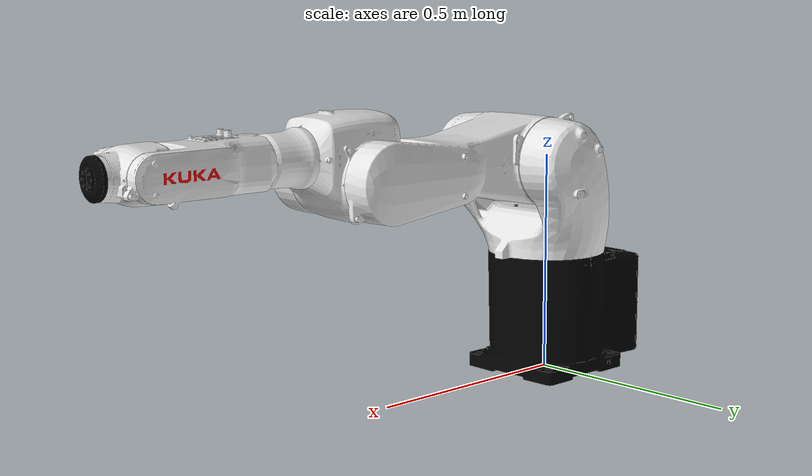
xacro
<?xml version="1.0" encoding="UTF-8"?>
<robot xmlns:xacro="http://www.ros.org/wiki/xacro" name="kr16_r1100_3">
  <!-- Import urdf files  -->
  <xacro:include filename="$(find kuka_agilus_support)/urdf/kr16_r1100_3_macro.xacro"/>
  <xacro:include filename="$(find kuka_agilus_support)/urdf/kr_agilus_ros2_control_macro.xacro"/>
  <!-- Basic arguments  -->
  <xacro:arg name="prefix" default=""/>
  <xacro:arg name="x" default="0"/>
  <xacro:arg name="y" default="0"/>
  <xacro:arg name="z" default="0"/>
  <xacro:arg name="roll" default="0"/>
  <xacro:arg name="pitch" default="0"/>
  <xacro:arg name="yaw" default="0"/>
  <xacro:arg name="rsi_xml_config_file" default=""/>
  <!-- kroshu-specific arguments -->
  <xacro:arg name="driver_version" default="rsi_only"/>
  <xacro:arg name="mode" default="hardware"/>
  <xacro:arg name="gpio_config" default=""/>
  <xacro:arg name="roundtrip_time" default="0"/>
  <xacro:arg name="client_ip" default="0.0.0.0"/>
  <xacro:arg name="client_port" default="59152"/>
  <xacro:arg name="mxa_client_port" default="1337"/>
  <xacro:arg name="controller_ip" default="0.0.0.0"/>
  <xacro:arg name="verify_robot_model" default="true"/>
  <xacro:kuka_agilus_ros2_control name="$(arg prefix)kr16_r1100_3" driver_version="$(arg driver_version)" client_ip="$(arg client_ip)" client_port="$(arg client_port)" mxa_client_port="$(arg mxa_client_port)" controller_ip="$(arg controller_ip)" prefix="$(arg prefix)" mode="$(arg mode)" gpio_config="$(arg gpio_config)" roundtrip_time="$(arg roundtrip_time)" verify_robot_model="$(arg verify_robot_model)" rsi_xml_config_file="$(arg rsi_xml_config_file)">
    <ext_axes_ros2_control_joints/>
  </xacro:kuka_agilus_ros2_control>
  <!-- world link -->
  <link name="world"/>
  <!-- robot links, joints -->
  <xacro:kuka_kr16_r1100_3_robot prefix="$(arg prefix)" package_name="kuka_agilus_support"/>
  <!-- default world - base_link joint -->
  <joint name="$(arg prefix)world-base_link" type="fixed">
    <parent link="world"/>
    <child link="$(arg prefix)base_link"/>
    <origin xyz="$(arg x) $(arg y) $(arg z)" rpy="$(arg roll) $(arg pitch) $(arg yaw)"/>
  </joint>
</robot>

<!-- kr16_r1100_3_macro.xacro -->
<robot xmlns:xacro="http://www.ros.org/wiki/xacro" name="kr16_r1100_3">
  <xacro:macro name="kuka_kr16_r1100_3_robot" params="prefix package_name">
    <link name="${prefix}base"/>
    <link name="${prefix}base_link">
      <collision>
        <geometry>
          <mesh filename="package://${package_name}/meshes/kr16_r1100_3/collision/base_link.stl"/>
        </geometry>
        <origin rpy="0.0 0.0 0.0" xyz="0.0 0.0 0.0"/>
      </collision>
      <inertial>
        <inertia ixx="0.3057" ixy="0.0" ixz="0.0" iyy="0.2546" iyz="0.0" izz="0.3706"/>
        <mass value="24.28"/>
        <origin rpy="-1.573 -1.1452 -3.1389" xyz="-0.0308 0.0 0.1313"/>
      </inertial>
      <visual>
        <geometry>
          <mesh filename="package://${package_name}/meshes/kr16_r1100_3/visual/base_link.dae"/>
        </geometry>
        <origin rpy="0.0 0.0 0.0" xyz="0.0 0.0 0.0"/>
      </visual>
    </link>
    <link name="${prefix}flange"/>
    <link name="${prefix}link_1">
      <collision>
        <geometry>
          <mesh filename="package://${package_name}/meshes/kr16_r1100_3/collision/link_1.stl"/>
        </geometry>
        <origin rpy="-3.1415853071795867 0.0 -0.0" xyz="0.0 -1.909332012706668e-06 0.25989999999298663"/>
      </collision>
      <inertial>
        <inertia ixx="0.2837" ixy="0.0" ixz="0.0" iyy="0.3388" iyz="0.0" izz="0.4206"/>
        <mass value="19.49"/>
        <origin rpy="-1.3913 -0.9149 1.6092" xyz="0.0324 -0.018 -0.1088"/>
      </inertial>
      <visual>
        <geometry>
          <mesh filename="package://${package_name}/meshes/kr16_r1100_3/visual/link_1.dae"/>
        </geometry>
        <origin rpy="-3.1415853071795867 0.0 -0.0" xyz="0.0 -1.909332012706668e-06 0.25989999999298663"/>
      </visual>
    </link>
    <link name="${prefix}link_2">
      <collision>
        <geometry>
          <mesh filename="package://${package_name}/meshes/kr16_r1100_3/collision/link_2.stl"/>
        </geometry>
        <origin rpy="1.5708 4.70197740325743e-38 1.5707963267948966" xyz="-0.4999994817073869 -0.09999999999999998 -0.1410999272695871"/>
      </collision>
      <inertial>
        <inertia ixx="1.1711" ixy="0.0" ixz="0.0" iyy="0.2762" iyz="0.0" izz="1.346"/>
        <mass value="26.554"/>
        <origin rpy="-1.5577 -1.4952 -0.0134" xyz="0.148 -0.0001 -0.1047"/>
      </inertial>
      <visual>
        <geometry>
          <mesh filename="package://${package_name}/meshes/kr16_r1100_3/visual/link_2.dae"/>
        </geometry>
        <origin rpy="1.5708 4.70197740325743e-38 1.5707963267948966" xyz="-0.4999994817073869 -0.09999999999999998 -0.1410999272695871"/>
      </visual>
    </link>
    <link name="${prefix}link_3">
      <collision>
        <geometry>
          <mesh filename="package://${package_name}/meshes/kr16_r1100_3/collision/link_3.stl"/>
        </geometry>
        <origin rpy="1.5708 -0.0 -0.0" xyz="-0.10000000000000003 0.999999481707387 -0.11659992726958707"/>
      </collision>
      <inertial>
        <inertia ixx="0.0673" ixy="0.0" ixz="0.0" iyy="0.0644" iyz="0.0" izz="0.0767"/>
        <mass value="11.2333"/>
        <origin rpy="0.8447 0.3051 0.813" xyz="0.018 -0.0249 -0.0958"/>
      </inertial>
      <visual>
        <geometry>
          <mesh filename="package://${package_name}/meshes/kr16_r1100_3/visual/link_3.dae"/>
        </geometry>
        <origin rpy="1.5708 -0.0 -0.0" xyz="-0.10000000000000003 0.999999481707387 -0.11659992726958707"/>
      </visual>
    </link>
    <link name="${prefix}link_4">
      <collision>
        <geometry>
          <mesh filename="package://${package_name}/meshes/kr16_r1100_3/collision/link_4.stl"/>
        </geometry>
        <origin rpy="-2.3561908169838683 1.570791132121014 -2.356194490195718" xyz="-1.0499986585350396 8.959098436386357e-07 0.22410385686016393"/>
      </collision>
      <inertial>
        <inertia ixx="0.0165" ixy="0.0" ixz="0.0" iyy="0.0987" iyz="0.0" izz="0.1042"/>
        <mass value="5.5747"/>
        <origin rpy="1.4524 -1.5372 -1.4584" xyz="-0.0016 0.0075 -0.1811"/>
      </inertial>
      <visual>
        <geometry>
          <mesh filename="package://${package_name}/meshes/kr16_r1100_3/visual/link_4.dae"/>
        </geometry>
        <origin rpy="-2.3561908169838683 1.570791132121014 -2.356194490195718" xyz="-1.0499986585350396 8.959098436386357e-07 0.22410385686016393"/>
      </visual>
    </link>
    <link name="${prefix}link_5">
      <collision>
        <geometry>
          <mesh filename="package://${package_name}/meshes/kr16_r1100_3/collision/link_5.stl"/>
        </geometry>
        <origin rpy="1.5708036732051034 -1.3492460511333464e-11 3.673218595765785e-06" xyz="-0.6000036430930371 1.0499988723052023 -0.05819745116616916"/>
      </collision>
      <inertial>
        <inertia ixx="0.0052" ixy="0.0" ixz="0.0" iyy="0.0041" iyz="0.0" izz="0.0059"/>
        <mass value="2.6776"/>
        <origin rpy="-1.5332 -1.4195 -0.0423" xyz="0.0088 -0.0006 -0.0524"/>
      </inertial>
      <visual>
        <geometry>
          <mesh filename="package://${package_name}/meshes/kr16_r1100_3/visual/link_5.dae"/>
        </geometry>
        <origin rpy="1.5708036732051034 -1.3492460511333464e-11 3.673218595765785e-06" xyz="-0.6000036430930371 1.0499988723052023 -0.05819745116616916"/>
      </visual>
    </link>
    <link name="${prefix}link_6">
      <collision>
        <geometry>
          <mesh filename="package://${package_name}/meshes/kr16_r1100_3/collision/link_6.stl"/>
        </geometry>
        <origin rpy="-2.6779399020961754 1.5707881132943111 -2.6779472485198745" xyz="-1.0499964413575995 4.979788517047373e-06 0.6618074999359618"/>
      </collision>
      <inertial>
        <inertia ixx="0.0002" ixy="0.0" ixz="0.0" iyy="0.0002" iyz="0.0" izz="0.0003"/>
        <mass value="0.4727"/>
        <origin rpy="-0.0002 0.0 -1.5692" xyz="0.0 0.0 -0.0136"/>
      </inertial>
      <visual>
        <geometry>
          <mesh filename="package://${package_name}/meshes/kr16_r1100_3/visual/link_6.dae"/>
        </geometry>
        <origin rpy="-2.6779399020961754 1.5707881132943111 -2.6779472485198745" xyz="-1.0499964413575995 4.979788517047373e-06 0.6618074999359618"/>
      </visual>
    </link>
    <link name="${prefix}tool0"/>
    <joint name="${prefix}base_link-base" type="fixed">
      <child link="${prefix}base"/>
      <origin rpy="0.0 0.0 0.0" xyz="0.0 0.0 0.0"/>
      <parent link="${prefix}base_link"/>
    </joint>
    <joint name="${prefix}joint_1" type="revolute">
      <axis xyz="0.0 0.0 1.0"/>
      <child link="${prefix}link_1"/>
      <limit effort="444.96" lower="-2.9671" upper="2.9671" velocity="5.0615"/>
      <origin rpy="-3.1416 0.0 0.0" xyz="0.0 0.0 0.2599"/>
      <parent link="${prefix}base_link"/>
    </joint>
    <joint name="${prefix}joint_2" type="revolute">
      <axis xyz="0.0 0.0 1.0"/>
      <child link="${prefix}link_2"/>
      <limit effort="446.874" lower="-3.4034" upper="0.9599" velocity="4.7124"/>
      <origin rpy="1.5708 0.0 0.0" xyz="0.1 -0.1411 -0.2401"/>
      <parent link="${prefix}link_1"/>
    </joint>
    <joint name="${prefix}joint_3" type="revolute">
      <axis xyz="0.0 0.0 1.0"/>
      <child link="${prefix}link_3"/>
      <limit effort="249.3881" lower="-2.0071" upper="2.8798" velocity="4.7124"/>
      <origin rpy="0.0 0.0 0.0" xyz="0.5 0.0 -0.0245"/>
      <parent link="${prefix}link_2"/>
    </joint>
    <joint name="${prefix}joint_4" type="revolute">
      <axis xyz="0.0 0.0 1.0"/>
      <child link="${prefix}link_4"/>
      <limit effort="30.4133" lower="-3.4907" upper="3.4907" velocity="7.5049"/>
      <origin rpy="1.5708 0.0 -1.5708" xyz="0.1241 -0.05 -0.1166"/>
      <parent link="${prefix}link_3"/>
    </joint>
    <joint name="${prefix}joint_5" type="revolute">
      <axis xyz="0.0 0.0 1.0"/>
      <child link="${prefix}link_5"/>
      <limit effort="35.4812" lower="-2.0944" upper="2.0944" velocity="7.854"/>
      <origin rpy="0.0 1.5708 1.5708" xyz="0.0 0.0582 -0.3759"/>
      <parent link="${prefix}link_4"/>
    </joint>
    <joint name="${prefix}joint_6" type="revolute">
      <axis xyz="0.0 0.0 1.0"/>
      <child link="${prefix}link_6"/>
      <limit effort="35.4464" lower="-6.1087" upper="6.1087" velocity="12.2173"/>
      <origin rpy="1.5708 0.0 -1.5708" xyz="0.0618 0.0 -0.0582"/>
      <parent link="${prefix}link_5"/>
    </joint>
    <joint name="${prefix}link_6-flange" type="fixed">
      <child link="${prefix}flange"/>
      <origin rpy="0.0 1.5708 0.0" xyz="0.0 0.0 -0.0282"/>
      <parent link="${prefix}link_6"/>
    </joint>
    <joint name="${prefix}link_6-tool0" type="fixed">
      <child link="${prefix}tool0"/>
      <origin rpy="3.1416 -0.0 3.1416" xyz="0.0 0.0 -0.0282"/>
      <parent link="${prefix}link_6"/>
    </joint>
  </xacro:macro>
</robot>
